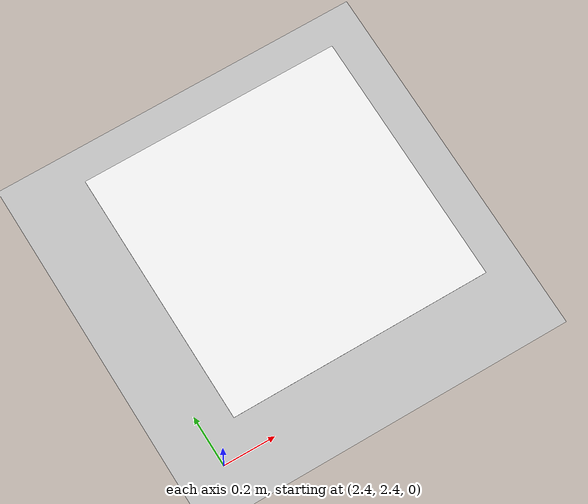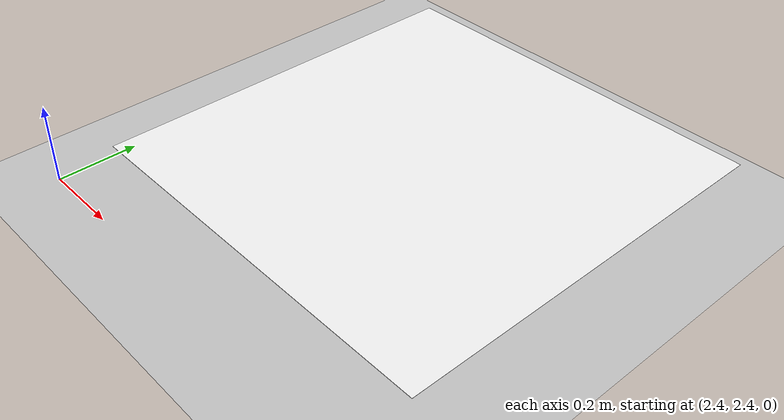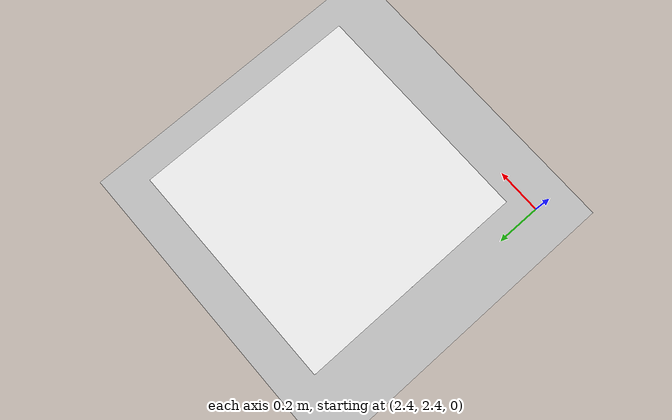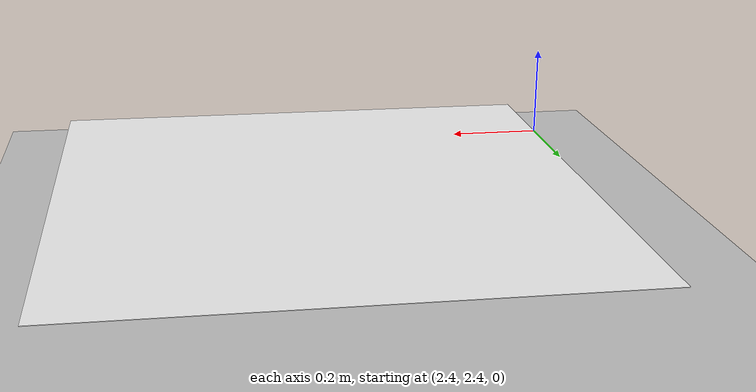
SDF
<?xml version="1.0" ?>
<sdf version="1.5">
  <world name="default">
    <!-- A global light source -->
    <include>
      <uri>model://sun</uri>
    </include>
    <!-- A ground plane -->
    <include>
      <uri>model://ground_plane</uri>
    </include>

    <physics name='default_physics' default='0' type='ode'>
      <gravity>0 0 -9.8066</gravity>
      <ode>
        <solver>
          <type>quick</type>
          <iters>10</iters>
          <sor>1.3</sor>
          <use_dynamic_moi_rescaling>0</use_dynamic_moi_rescaling>
        </solver>
        <constraints>
          <cfm>0</cfm>
          <erp>0.2</erp>
          <contact_max_correcting_vel>100</contact_max_correcting_vel>
          <contact_surface_layer>0.001</contact_surface_layer>
        </constraints>
      </ode>
      <max_step_size>0.004</max_step_size>
      <real_time_factor>1</real_time_factor>
      <real_time_update_rate>250</real_time_update_rate>
      <magnetic_field>6.0e-6 2.3e-5 -4.2e-5</magnetic_field>
    </physics>

     <!-- Define the world frame -->
    <frame name="world">
      <pose>0 0 0 0 0 0</pose>
    </frame>

     <!-- Include ArUco marker model -->
    <include>
      <uri>model://aruco</uri>
      <pose>3 3 0.1 0 0 0</pose>
    </include>

  </world>
</sdf>

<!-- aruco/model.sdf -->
<sdf version="1.6">
  <model name="aruco_marker">
    <static>true</static>
    <link name="link">
      <visual name="visual">
        <geometry>
          <plane>
            <normal>0 0 1</normal>
            <size>1 1</size>  <!-- Adjust the size as needed -->
          </plane>
        </geometry>
        <material>
          <script>
            <uri>model://aruco/materials/scripts</uri>
            <uri>model://aruco/materials/textures</uri>
            <name>marker</name>
          </script>
          <ambient>1 1 1 1</ambient>
          <diffuse>1 1 1 1</diffuse>
          <specular>0 0 0 1</specular>
          <emissive>0 0 0 1</emissive>
        </material>
      </visual>
      <collision name="collision">
        <geometry>
          <plane>
            <normal>0 0 1</normal>
            <size>1 1</size>
          </plane>
        </geometry>
      </collision>
    </link>
  </model>
</sdf>
